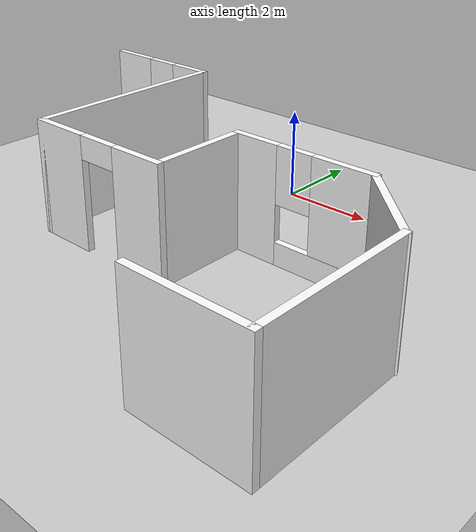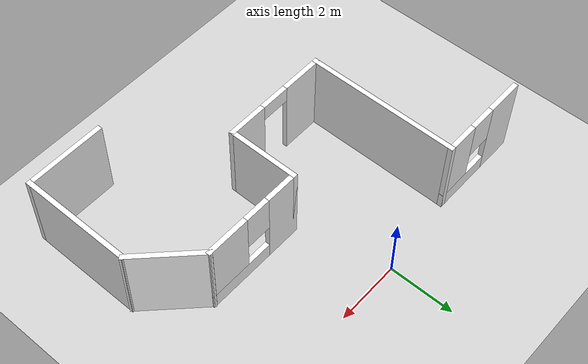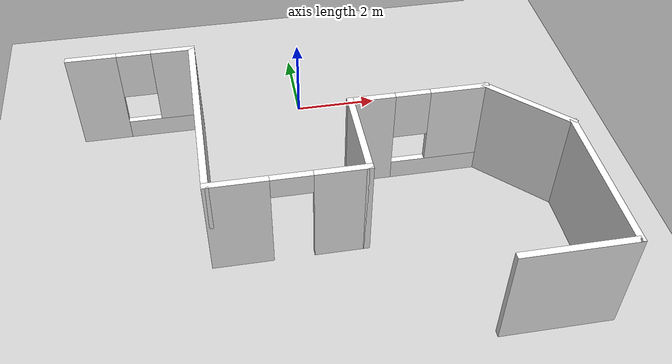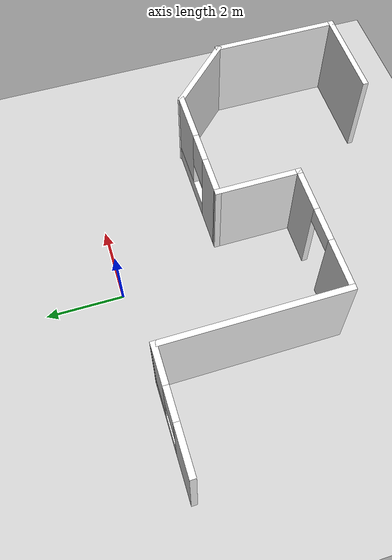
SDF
<sdf version="1.9">
 <world name="house">
  <physics name="1ms" type="ignored">
   <max_step_size>0.001</max_step_size>
   <real_time_factor>1.0</real_time_factor>
  </physics>
  <plugin filename="ignition-gazebo-physics-system" name="ignition::gazebo::systems::Physics"/>
  <plugin filename="ignition-gazebo-user-commands-system" name="ignition::gazebo::systems::UserCommands"/>
  <plugin filename="ignition-gazebo-scene-broadcaster-system" name="ignition::gazebo::systems::SceneBroadcaster"/>
  <light type="directional" name="sun">
   <pose>0 0 10 0 0 0</pose>
   <diffuse>1 1 1 1</diffuse>
   <specular>0.5 0.5 0.5 1</specular>
   <attenuation>
    <range>1000</range>
    <constant>0.9</constant>
    <linear>0.01</linear>
    <quadratic>0.001</quadratic>
   </attenuation>
   <direction>-0.5 0.1 -0.9</direction>
  </light>
  <model name="ground_plane">
   <static>true</static>
   <link name="link">
    <collision name="collision">
     <geometry><plane><normal>0 0 1</normal><size>100 100</size></plane></geometry>
    </collision>
    <visual name="visual">
     <geometry><plane><normal>0 0 1</normal><size>100 100</size></plane></geometry>
     <material>
      <ambient>0.8 0.8 0.8 1</ambient>
      <diffuse>0.8 0.8 0.8 1</diffuse>
      <specular>0.8 0.8 0.8 1</specular>
     </material>
    </visual>
   </link>
  </model>
  <include><pose>-0.002092 -3.84468 0 0 -0 0</pose><uri>model://walls</uri></include>
 </world>
</sdf>

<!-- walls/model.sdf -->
<sdf version="1.6">
  <model name="walls">
    <static>true</static>
    <link name="Wall_1">
      <pose>-3.98299 3.56524 0 0 -0 0</pose>
      <visual name="Wall_1_Visual_0">
        <pose>-0.913039 0 1.25 0 -0 0</pose>
        <geometry>
          <box>
            <size>1.17392 0.15 2.5</size>
          </box>
        </geometry>
        <material>
          <pbr>
            <metal>
              <albedo_map>materials/textures/wood.png</albedo_map>
            </metal>
          </pbr>
          <ambient>1.0 1.0 1.0 1.0</ambient>
          <diffuse>1.0 1.0 1.0 1.0</diffuse>
          <specular>0.2 0.2 0.2 1.0</specular>
        </material>
        <meta>
          <layer>0</layer>
        </meta>
      </visual>
      <collision name="Wall_1_Collision_0">
        <geometry>
          <box>
            <size>1.17392 0.15 2.5</size>
          </box>
        </geometry>
        <pose>-0.913039 0 1.25 0 -0 0</pose>
        <max_contacts>10</max_contacts>
        <surface>
          <contact>
            <ode />
          </contact>
          <bounce />
          <friction>
            <torsional>
              <ode />
            </torsional>
            <ode />
          </friction>
        </surface>
      </collision>
      <visual name="Wall_1_Visual_1">
        <pose>0.586961 0 0.25 0 -0 0</pose>
        <geometry>
          <box>
            <size>1.82608 0.15 0.5</size>
          </box>
        </geometry>
        <material>
          <pbr>
            <metal>
              <albedo_map>materials/textures/wood.png</albedo_map>
            </metal>
          </pbr>
          <ambient>1.0 1.0 1.0 1.0</ambient>
          <diffuse>1.0 1.0 1.0 1.0</diffuse>
          <specular>0.2 0.2 0.2 1.0</specular>
        </material>
        <meta>
          <layer>0</layer>
        </meta>
      </visual>
      <collision name="Wall_1_Collision_1">
        <geometry>
          <box>
            <size>1.82608 0.15 0.5</size>
          </box>
        </geometry>
        <pose>0.586961 0 0.25 0 -0 0</pose>
        <max_contacts>10</max_contacts>
        <surface>
          <contact>
            <ode />
          </contact>
          <bounce />
          <friction>
            <torsional>
              <ode />
            </torsional>
            <ode />
          </friction>
        </surface>
      </collision>
      <visual name="Wall_1_Visual_2">
        <pose>0.986961 0 1.5 0 -0 0</pose>
        <geometry>
          <box>
            <size>1.02608 0.15 2</size>
          </box>
        </geometry>
        <material>
          <pbr>
            <metal>
              <albedo_map>materials/textures/wood.png</albedo_map>
            </metal>
          </pbr>
          <ambient>1.0 1.0 1.0 1.0</ambient>
          <diffuse>1.0 1.0 1.0 1.0</diffuse>
          <specular>0.2 0.2 0.2 1.0</specular>
        </material>
        <meta>
          <layer>0</layer>
        </meta>
      </visual>
      <collision name="Wall_1_Collision_2">
        <geometry>
          <box>
            <size>1.02608 0.15 2</size>
          </box>
        </geometry>
        <pose>0.986961 0 1.5 0 -0 0</pose>
        <max_contacts>10</max_contacts>
        <surface>
          <contact>
            <ode />
          </contact>
          <bounce />
          <friction>
            <torsional>
              <ode />
            </torsional>
            <ode />
          </friction>
        </surface>
      </collision>
      <visual name="Wall_1_Visual_3">
        <pose>0.073921 0 1.9 0 -0 0</pose>
        <geometry>
          <box>
            <size>0.8 0.15 1.2</size>
          </box>
        </geometry>
        <material>
          <pbr>
            <metal>
              <albedo_map>materials/textures/wood.png</albedo_map>
            </metal>
          </pbr>
          <ambient>1.0 1.0 1.0 1.0</ambient>
          <diffuse>1.0 1.0 1.0 1.0</diffuse>
          <specular>0.2 0.2 0.2 1.0</specular>
        </material>
        <meta>
          <layer>0</layer>
        </meta>
      </visual>
      <collision name="Wall_1_Collision_3">
        <geometry>
          <box>
            <size>0.8 0.15 1.2</size>
          </box>
        </geometry>
        <pose>0.073921 0 1.9 0 -0 0</pose>
        <max_contacts>10</max_contacts>
        <surface>
          <contact>
            <ode />
          </contact>
          <bounce />
          <friction>
            <torsional>
              <ode />
            </torsional>
            <ode />
          </friction>
        </surface>
      </collision>
      <self_collide>0</self_collide>
      <enable_wind>0</enable_wind>
      <kinematic>0</kinematic>
    </link>
    <link name="Wall_2">
      <collision name="Wall_2_Collision">
        <geometry>
          <box>
            <size>4.75 0.15 2.5</size>
          </box>
        </geometry>
        <pose>0 0 1.25 0 -0 0</pose>
        <max_contacts>10</max_contacts>
        <surface>
          <contact>
            <ode />
          </contact>
          <bounce />
          <friction>
            <torsional>
              <ode />
            </torsional>
            <ode />
          </friction>
        </surface>
      </collision>
      <visual name="Wall_2_Visual">
        <pose>0 0 1.25 0 -0 0</pose>
        <geometry>
          <box>
            <size>4.75 0.15 2.5</size>
          </box>
        </geometry>
        <material>
          <pbr>
            <metal>
              <albedo_map>materials/textures/wood.png</albedo_map>
            </metal>
          </pbr>
          <ambient>1.0 1.0 1.0 1.0</ambient>
          <diffuse>1.0 1.0 1.0 1.0</diffuse>
          <specular>0.2 0.2 0.2 1.0</specular>
        </material>
        <meta>
          <layer>0</layer>
        </meta>
      </visual>
      <pose>-2.558 1.26524 0 0 -0 -1.5708</pose>
      <self_collide>0</self_collide>
      <enable_wind>0</enable_wind>
      <kinematic>0</kinematic>
    </link>
    <link name="Wall_3">
      <pose>-0.882995 -1.03476 0 0 -0 0</pose>
      <visual name="Wall_3_Visual_0">
        <pose>-1.06823 0 1.25 0 -0 0</pose>
        <geometry>
          <box>
            <size>1.36353 0.15 2.5</size>
          </box>
        </geometry>
        <material>
          <pbr>
            <metal>
              <albedo_map>materials/textures/wood.png</albedo_map>
            </metal>
          </pbr>
          <ambient>1.0 1.0 1.0 1.0</ambient>
          <diffuse>1.0 1.0 1.0 1.0</diffuse>
          <specular>0.2 0.2 0.2 1.0</specular>
        </material>
        <meta>
          <layer>0</layer>
        </meta>
      </visual>
      <collision name="Wall_3_Collision_0">
        <geometry>
          <box>
            <size>1.36353 0.15 2.5</size>
          </box>
        </geometry>
        <pose>-1.06823 0 1.25 0 -0 0</pose>
        <max_contacts>10</max_contacts>
        <surface>
          <contact>
            <ode />
          </contact>
          <bounce />
          <friction>
            <torsional>
              <ode />
            </torsional>
            <ode />
          </friction>
        </surface>
      </collision>
      <visual name="Wall_3_Visual_1">
        <pose>1.13177 0 1.25 0 -0 0</pose>
        <geometry>
          <box>
            <size>1.23647 0.15 2.5</size>
          </box>
        </geometry>
        <material>
          <pbr>
            <metal>
              <albedo_map>materials/textures/wood.png</albedo_map>
            </metal>
          </pbr>
          <ambient>1.0 1.0 1.0 1.0</ambient>
          <diffuse>1.0 1.0 1.0 1.0</diffuse>
          <specular>0.2 0.2 0.2 1.0</specular>
        </material>
        <meta>
          <layer>0</layer>
        </meta>
      </visual>
      <collision name="Wall_3_Collision_1">
        <geometry>
          <box>
            <size>1.23647 0.15 2.5</size>
          </box>
        </geometry>
        <pose>1.13177 0 1.25 0 -0 0</pose>
        <max_contacts>10</max_contacts>
        <surface>
          <contact>
            <ode />
          </contact>
          <bounce />
          <friction>
            <torsional>
              <ode />
            </torsional>
            <ode />
          </friction>
        </surface>
      </collision>
      <visual name="Wall_3_Visual_2">
        <pose>0.063534 0 2.25 0 -0 0</pose>
        <geometry>
          <box>
            <size>0.9 0.15 0.5</size>
          </box>
        </geometry>
        <material>
          <pbr>
            <metal>
              <albedo_map>materials/textures/wood.png</albedo_map>
            </metal>
          </pbr>
          <ambient>1.0 1.0 1.0 1.0</ambient>
          <diffuse>1.0 1.0 1.0 1.0</diffuse>
          <specular>0.2 0.2 0.2 1.0</specular>
        </material>
        <meta>
          <layer>0</layer>
        </meta>
      </visual>
      <collision name="Wall_3_Collision_2">
        <geometry>
          <box>
            <size>0.9 0.15 0.5</size>
          </box>
        </geometry>
        <pose>0.063534 0 2.25 0 -0 0</pose>
        <max_contacts>10</max_contacts>
        <surface>
          <contact>
            <ode />
          </contact>
          <bounce />
          <friction>
            <torsional>
              <ode />
            </torsional>
            <ode />
          </friction>
        </surface>
      </collision>
      <self_collide>0</self_collide>
      <enable_wind>0</enable_wind>
      <kinematic>0</kinematic>
    </link>
    <link name="Wall_4">
      <collision name="Wall_4_Collision">
        <geometry>
          <box>
            <size>2.25 0.15 2.5</size>
          </box>
        </geometry>
        <pose>0 0 1.25 0 -0 0</pose>
        <max_contacts>10</max_contacts>
        <surface>
          <contact>
            <ode />
          </contact>
          <bounce />
          <friction>
            <torsional>
              <ode />
            </torsional>
            <ode />
          </friction>
        </surface>
      </collision>
      <visual name="Wall_4_Visual">
        <pose>0 0 1.25 0 -0 0</pose>
        <geometry>
          <box>
            <size>2.25 0.15 2.5</size>
          </box>
        </geometry>
        <material>
          <pbr>
            <metal>
              <albedo_map>materials/textures/wood.png</albedo_map>
            </metal>
          </pbr>
          <ambient>1.0 1.0 1.0 1.0</ambient>
          <diffuse>1.0 1.0 1.0 1.0</diffuse>
          <specular>0.2 0.2 0.2 1.0</specular>
        </material>
        <meta>
          <layer>0</layer>
        </meta>
      </visual>
      <pose>0.792005 0.01524 0 0 -0 1.5708</pose>
      <self_collide>0</self_collide>
      <enable_wind>0</enable_wind>
      <kinematic>0</kinematic>
    </link>
    <link name="Wall_5">
      <pose>2.342 1.06524 0 0 -0 0</pose>
      <visual name="Wall_5_Visual_0">
        <pose>-1.07902 0 1.25 0 -0 0</pose>
        <geometry>
          <box>
            <size>1.09197 0.15 2.5</size>
          </box>
        </geometry>
        <material>
          <pbr>
            <metal>
              <albedo_map>materials/textures/wood.png</albedo_map>
            </metal>
          </pbr>
          <ambient>1.0 1.0 1.0 1.0</ambient>
          <diffuse>1.0 1.0 1.0 1.0</diffuse>
          <specular>0.2 0.2 0.2 1.0</specular>
        </material>
        <meta>
          <layer>0</layer>
        </meta>
      </visual>
      <collision name="Wall_5_Collision_0">
        <geometry>
          <box>
            <size>1.09197 0.15 2.5</size>
          </box>
        </geometry>
        <pose>-1.07902 0 1.25 0 -0 0</pose>
        <max_contacts>10</max_contacts>
        <surface>
          <contact>
            <ode />
          </contact>
          <bounce />
          <friction>
            <torsional>
              <ode />
            </torsional>
            <ode />
          </friction>
        </surface>
      </collision>
      <visual name="Wall_5_Visual_1">
        <pose>0.545983 0 0.25 0 -0 0</pose>
        <geometry>
          <box>
            <size>2.15803 0.15 0.5</size>
          </box>
        </geometry>
        <material>
          <pbr>
            <metal>
              <albedo_map>materials/textures/wood.png</albedo_map>
            </metal>
          </pbr>
          <ambient>1.0 1.0 1.0 1.0</ambient>
          <diffuse>1.0 1.0 1.0 1.0</diffuse>
          <specular>0.2 0.2 0.2 1.0</specular>
        </material>
        <meta>
          <layer>0</layer>
        </meta>
      </visual>
      <collision name="Wall_5_Collision_1">
        <geometry>
          <box>
            <size>2.15803 0.15 0.5</size>
          </box>
        </geometry>
        <pose>0.545983 0 0.25 0 -0 0</pose>
        <max_contacts>10</max_contacts>
        <surface>
          <contact>
            <ode />
          </contact>
          <bounce />
          <friction>
            <torsional>
              <ode />
            </torsional>
            <ode />
          </friction>
        </surface>
      </collision>
      <visual name="Wall_5_Visual_2">
        <pose>0.945983 0 1.5 0 -0 0</pose>
        <geometry>
          <box>
            <size>1.35803 0.15 2</size>
          </box>
        </geometry>
        <material>
          <pbr>
            <metal>
              <albedo_map>materials/textures/wood.png</albedo_map>
            </metal>
          </pbr>
          <ambient>1.0 1.0 1.0 1.0</ambient>
          <diffuse>1.0 1.0 1.0 1.0</diffuse>
          <specular>0.2 0.2 0.2 1.0</specular>
        </material>
        <meta>
          <layer>0</layer>
        </meta>
      </visual>
      <collision name="Wall_5_Collision_2">
        <geometry>
          <box>
            <size>1.35803 0.15 2</size>
          </box>
        </geometry>
        <pose>0.945983 0 1.5 0 -0 0</pose>
        <max_contacts>10</max_contacts>
        <surface>
          <contact>
            <ode />
          </contact>
          <bounce />
          <friction>
            <torsional>
              <ode />
            </torsional>
            <ode />
          </friction>
        </surface>
      </collision>
      <visual name="Wall_5_Visual_3">
        <pose>-0.133033 0 1.9 0 -0 0</pose>
        <geometry>
          <box>
            <size>0.8 0.15 1.2</size>
          </box>
        </geometry>
        <material>
          <pbr>
            <metal>
              <albedo_map>materials/textures/wood.png</albedo_map>
            </metal>
          </pbr>
          <ambient>1.0 1.0 1.0 1.0</ambient>
          <diffuse>1.0 1.0 1.0 1.0</diffuse>
          <specular>0.2 0.2 0.2 1.0</specular>
        </material>
        <meta>
          <layer>0</layer>
        </meta>
      </visual>
      <collision name="Wall_5_Collision_3">
        <geometry>
          <box>
            <size>0.8 0.15 1.2</size>
          </box>
        </geometry>
        <pose>-0.133033 0 1.9 0 -0 0</pose>
        <max_contacts>10</max_contacts>
        <surface>
          <contact>
            <ode />
          </contact>
          <bounce />
          <friction>
            <torsional>
              <ode />
            </torsional>
            <ode />
          </friction>
        </surface>
      </collision>
      <self_collide>0</self_collide>
      <enable_wind>0</enable_wind>
      <kinematic>0</kinematic>
    </link>
    <link name="Wall_6">
      <collision name="Wall_6_Collision">
        <geometry>
          <box>
            <size>2.25 0.15 2.5</size>
          </box>
        </geometry>
        <pose>0 0 1.25 0 -0 0</pose>
        <max_contacts>10</max_contacts>
        <surface>
          <contact>
            <ode />
          </contact>
          <bounce />
          <friction>
            <torsional>
              <ode />
            </torsional>
            <ode />
          </friction>
        </surface>
      </collision>
      <visual name="Wall_6_Visual">
        <pose>0 0 1.25 0 -0 0</pose>
        <geometry>
          <box>
            <size>2.25 0.15 2.5</size>
          </box>
        </geometry>
        <material>
          <pbr>
            <metal>
              <albedo_map>materials/textures/wood.png</albedo_map>
            </metal>
          </pbr>
          <ambient>1.0 1.0 1.0 1.0</ambient>
          <diffuse>1.0 1.0 1.0 1.0</diffuse>
          <specular>0.2 0.2 0.2 1.0</specular>
        </material>
        <meta>
          <layer>0</layer>
        </meta>
      </visual>
      <pose>4.63447 0.322778 0 0 -0 -0.785398</pose>
      <self_collide>0</self_collide>
      <enable_wind>0</enable_wind>
      <kinematic>0</kinematic>
    </link>
    <link name="Wall_7">
      <collision name="Wall_7_Collision">
        <geometry>
          <box>
            <size>3.5 0.15 2.5</size>
          </box>
        </geometry>
        <pose>0 0 1.25 0 -0 0</pose>
        <max_contacts>10</max_contacts>
        <surface>
          <contact>
            <ode />
          </contact>
          <bounce />
          <friction>
            <torsional>
              <ode />
            </torsional>
            <ode />
          </friction>
        </surface>
      </collision>
      <visual name="Wall_7_Visual">
        <pose>0 0 1.25 0 -0 0</pose>
        <geometry>
          <box>
            <size>3.5 0.15 2.5</size>
          </box>
        </geometry>
        <material>
          <pbr>
            <metal>
              <albedo_map>materials/textures/wood.png</albedo_map>
            </metal>
          </pbr>
          <ambient>1.0 1.0 1.0 1.0</ambient>
          <diffuse>1.0 1.0 1.0 1.0</diffuse>
          <specular>0.2 0.2 0.2 1.0</specular>
        </material>
        <meta>
          <layer>0</layer>
        </meta>
      </visual>
      <pose>5.37693 -2.09468 0 0 -0 -1.5708</pose>
      <self_collide>0</self_collide>
      <enable_wind>0</enable_wind>
      <kinematic>0</kinematic>
    </link>
    <link name="Wall_8">
      <collision name="Wall_8_Collision">
        <geometry>
          <box>
            <size>2.5 0.15 2.5</size>
          </box>
        </geometry>
        <pose>0 0 1.25 0 -0 0</pose>
        <max_contacts>10</max_contacts>
        <surface>
          <contact>
            <ode />
          </contact>
          <bounce />
          <friction>
            <torsional>
              <ode />
            </torsional>
            <ode />
          </friction>
        </surface>
      </collision>
      <visual name="Wall_8_Visual">
        <pose>0 0 1.25 0 -0 0</pose>
        <geometry>
          <box>
            <size>2.5 0.15 2.5</size>
          </box>
        </geometry>
        <material>
          <pbr>
            <metal>
              <albedo_map>materials/textures/wood.png</albedo_map>
            </metal>
          </pbr>
          <ambient>1.0 1.0 1.0 1.0</ambient>
          <diffuse>1.0 1.0 1.0 1.0</diffuse>
          <specular>0.2 0.2 0.2 1.0</specular>
        </material>
        <meta>
          <layer>0</layer>
        </meta>
      </visual>
      <pose>4.20193 -3.76968 0 0 -0 3.14159</pose>
      <self_collide>0</self_collide>
      <enable_wind>0</enable_wind>
      <kinematic>0</kinematic>
    </link>
    <static>1</static>
  </model>
</sdf>
